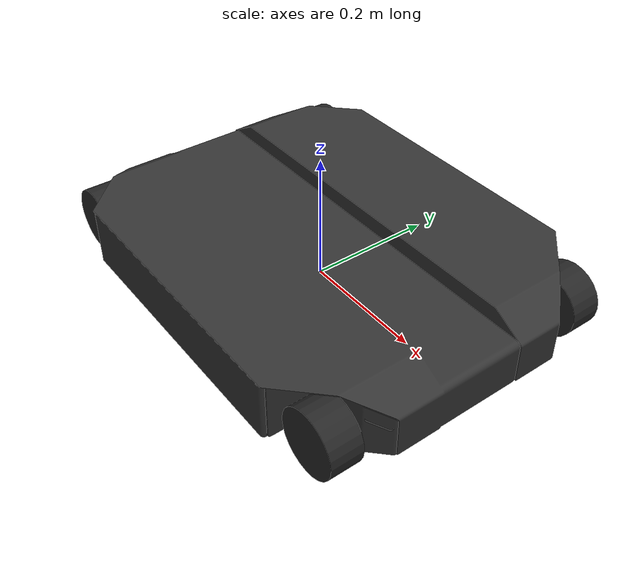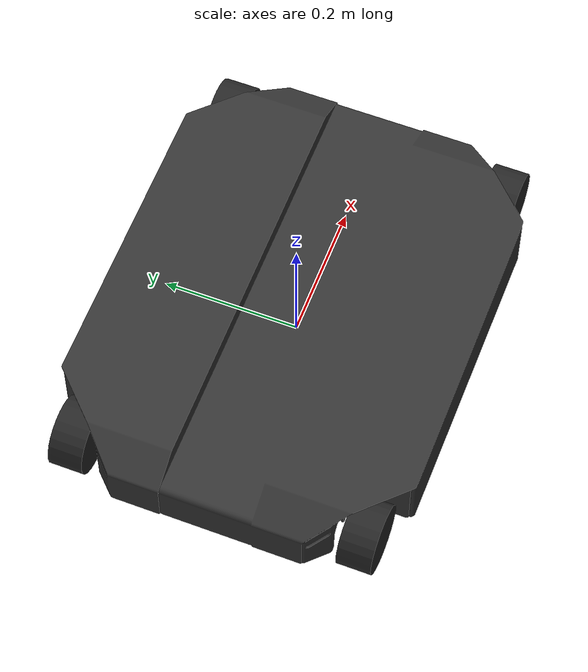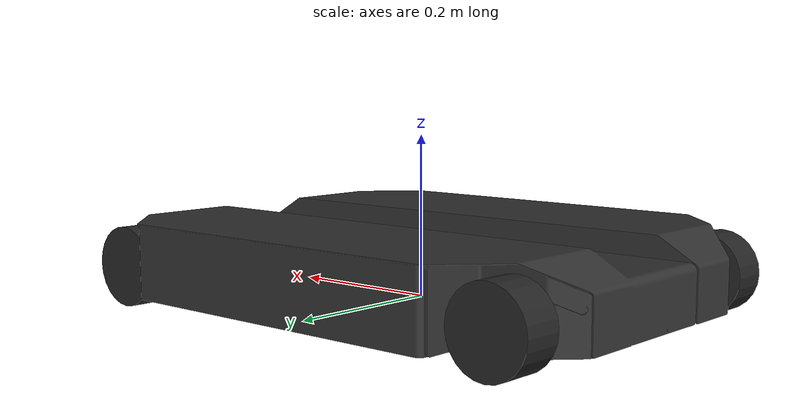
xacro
<?xml version="1.0"?>
<robot name="dingo" xmlns:xacro="http://www.ros.org/wiki/xacro">
  <xacro:property name="PI" value="3.1415926535897931" />

  <xacro:property name="wheelbase" value="0.570" />
  <xacro:property name="track" value="0.3708" />
  <xacro:property name="wheel_vertical_offset" value="0.035145" />

  <xacro:property name="wheel_radius" value="0.050" />
  <xacro:property name="wheel_mass" value="0.4" />
  <xacro:property name="wheel_width" value="0.050" />

  <xacro:property name="dummy_inertia" value="1e-09"/>

  <material name="dark_grey"><color rgba="0.2 0.2 0.2 1.0" /></material>
  <material name="light_grey"><color rgba="0.4 0.4 0.4 1.0" /></material>
  <material name="yellow"><color rgba="0.8 0.8 0.0 1.0" /></material>
  <material name="black"><color rgba="0.15 0.15 0.15 1.0" /></material>

  <xacro:macro name="wheel" params="prefix *joint_pose">

    <link name="${prefix}_wheel_link">
      <visual>
        <origin xyz="0 0 0" rpy="${PI/2} 0 0"/>
        <geometry>
          <cylinder radius="${wheel_radius}" length="${wheel_width}"/>
        </geometry>
        <material name="black" />
      </visual>
      <collision>
        <origin xyz="0 0 0" rpy="${PI/2} 0 0"/>
        <geometry>
          <cylinder radius="${wheel_radius}" length="${wheel_width}"/>
        </geometry>
      </collision>
      <inertial>
        <origin xyz="0 0 0" rpy="0 0 0"/>
        <mass value="${wheel_mass}"/>
        <inertia
          ixx="0.0003234" ixy="0" ixz="0"
          iyy="0.0003234" iyz="0"
          izz="0.0004901"/>
      </inertial>
    </link>

    <joint name="${prefix}_wheel" type="continuous">
      <parent link="chassis_link"/>
      <child link="${prefix}_wheel_link" />
      <xacro:insert_block name="joint_pose" />
      <axis xyz="0 1 0" />
    </joint>

    <transmission name="${prefix}_wheel_trans">
      <type>transmission_interface/SimpleTransmission</type>
      <joint name="${prefix}_wheel">
        <hardwareInterface>hardware_interface/VelocityJointInterface</hardwareInterface>
      </joint>
      <actuator name="${prefix}_actuator">
        <mechanicalReduction>1</mechanicalReduction>
      </actuator>
    </transmission>
  </xacro:macro>

  <xacro:wheel prefix="front_left">
    <origin xyz="${wheelbase/2} ${track/2+wheel_width/2} ${wheel_vertical_offset}" rpy="0 0 0" />
  </xacro:wheel>
  <xacro:wheel prefix="front_right">
    <origin xyz="${wheelbase/2} ${-track/2-wheel_width/2} ${wheel_vertical_offset}" rpy="0 0 0" />
  </xacro:wheel>
  <xacro:wheel prefix="rear_left">
    <origin xyz="${-wheelbase/2} ${track/2+wheel_width/2} ${wheel_vertical_offset}" rpy="0 0 0" />
  </xacro:wheel>
  <xacro:wheel prefix="rear_right">
    <origin xyz="${-wheelbase/2} ${-track/2-wheel_width/2} ${wheel_vertical_offset}" rpy="0 0 0" />
  </xacro:wheel>

  <link name="base_link"></link>

  <joint name="base_link_joint" type="fixed">
    <origin xyz="0 0 0" rpy="0 0 0" />
    <parent link="base_link"/>
    <child link="chassis_link" />
  </joint>

  <link name="chassis_link">
    <visual>
      <origin xyz="0 0 0" rpy="0 0 0"/>
      <geometry>
        <mesh filename="package://dingo_description/meshes/omni_chassis.dae"/>
      </geometry>
      <material name="dark_grey" />
    </visual>
    <collision>
      <origin xyz="0 0 0"/>
      <geometry>
        <mesh filename="package://dingo_description/meshes/omni_chassis_collision.stl"/>
      </geometry>
    </collision>
    <inertial>
      <!-- Center of mass -->
      <origin xyz="0 0 0" rpy="0 0 0"/>
      <mass value="14"/>
      <!-- Moments of inertia: ( chassis without wheels ) -->
      <inertia
        ixx="0.35498" ixy="0" ixz="0"
        iyy="0.7266" iyz="0"
        izz="1.0553"/>
      </inertial>
  </link>

  <link name="imu_link">
    <inertial>
      <mass value="0.001"/>
      <origin xyz="0 0 0" rpy="0 0 0"/>
      <inertia ixx="${dummy_inertia}" ixy="0.0" ixz="0.0" iyy="${dummy_inertia}" iyz="0.0" izz="${dummy_inertia}"/>
    </inertial>
  </link>
  <joint name="imu_joint" type="fixed">
    <parent link="chassis_link" />
    <child link="imu_link" />
  </joint>

  <link name="front_mount"></link>

  <joint name="front_mount_joint" type="fixed">
    <origin xyz="0.2 0 0.05" rpy="0 0 0" />
    <parent link="chassis_link"/>
    <child link="front_mount" />
  </joint>

  <!-- Bring in simulation data for Gazebo. -->
  <xacro:include filename="$(find dingo_description)/urdf/dingo.gazebo" />
  <xacro:include filename="$(find dingo_description)/urdf/dingo-o.gazebo" />
  <!-- Optional standard accessories, including their simulation data. The rendering
       of these into the final description is controlled by optenv variables, which
       default each one to off.-->
  <xacro:include filename="$(find dingo_description)/urdf/accessories.urdf.xacro" />

  <!-- Optional custom includes. -->
  <xacro:include filename="$(optenv DINGO_URDF_EXTRAS empty.urdf)" />
</robot>
